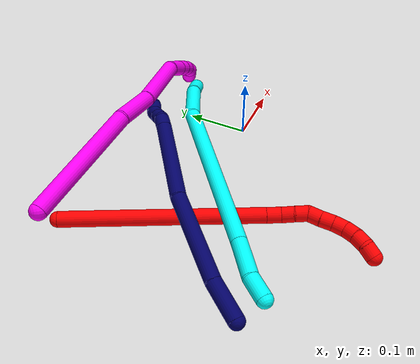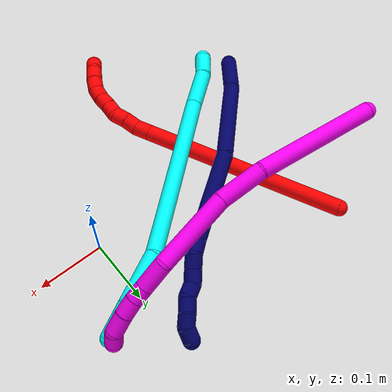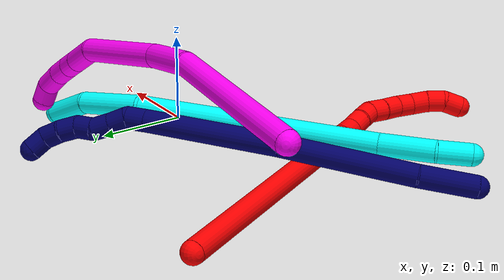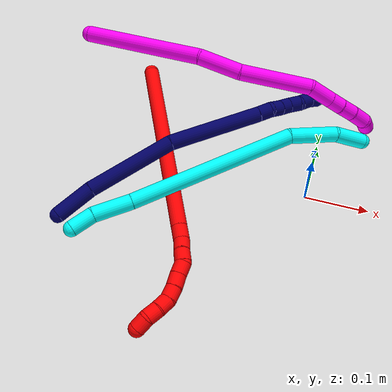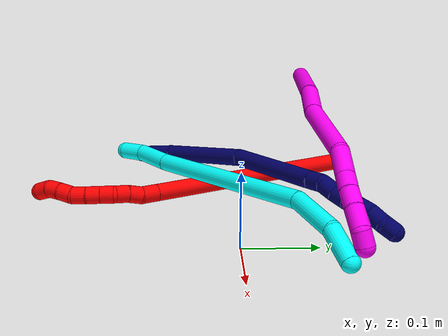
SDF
<sdf version="1.7">
 <world name="default">
  <model name="2">
   <static>0</static>
   <link name="2">
    <collision name="collision-cylinder-e_1_1_4">
     <pose>0.105596 -0.094481 0.069519 0.936448 0.732934 0.383437</pose>
     <geometry><cylinder><radius>0.0125</radius><length>0.315658</length></cylinder></geometry>
     <surface>
      <friction><ode><mu>1.16</mu><mu2>1.16</mu2><slip1>0</slip1><slip2>0</slip2></ode></friction>
      <contact><ode><kp>1e+06</kp><kd>1</kd><max_vel>0</max_vel><min_depth>0.001</min_depth></ode></contact>
     </surface>
    </collision>
    <visual name="visual-cylinder-e_1_1_4">
     <pose>0.105596 -0.094481 0.069519 0.936448 0.732934 0.383437</pose>
     <geometry><cylinder><radius>0.0125</radius><length>0.315658</length></cylinder></geometry>
     <material><ambient>1 0 0 1</ambient></material>
    </visual>
    <collision name="collision-cylinder-e_2_4_5">
     <pose>0.219106 -0.196065 0.144253 0.937448 0.73174 0.383234</pose>
     <geometry><cylinder><radius>0.0125</radius><length>0.023687</length></cylinder></geometry>
     <surface>
      <friction><ode><mu>1.16</mu><mu2>1.16</mu2><slip1>0</slip1><slip2>0</slip2></ode></friction>
      <contact><ode><kp>1e+06</kp><kd>1</kd><max_vel>0</max_vel><min_depth>0.001</min_depth></ode></contact>
     </surface>
    </collision>
    <visual name="visual-cylinder-e_2_4_5">
     <pose>0.219106 -0.196065 0.144253 0.937448 0.73174 0.383234</pose>
     <geometry><cylinder><radius>0.0125</radius><length>0.023687</length></cylinder></geometry>
     <material><ambient>1 0 0 1</ambient></material>
    </visual>
    <collision name="collision-cylinder-e_3_5_6">
     <pose>0.232955 -0.211149 0.152114 1.25072 0.614729 0.450598</pose>
     <geometry><cylinder><radius>0.0125</radius><length>0.020586</length></cylinder></geometry>
     <surface>
      <friction><ode><mu>1.16</mu><mu2>1.16</mu2><slip1>0</slip1><slip2>0</slip2></ode></friction>
      <contact><ode><kp>1e+06</kp><kd>1</kd><max_vel>0</max_vel><min_depth>0.001</min_depth></ode></contact>
     </surface>
    </collision>
    <visual name="visual-cylinder-e_3_5_6">
     <pose>0.232955 -0.211149 0.152114 1.25072 0.614729 0.450598</pose>
     <geometry><cylinder><radius>0.0125</radius><length>0.020586</length></cylinder></geometry>
     <material><ambient>1 0 0 1</ambient></material>
    </visual>
    <collision name="collision-cylinder-e_4_6_7">
     <pose>0.245224 -0.225927 0.158471 1.07098 0.685409 0.417208</pose>
     <geometry><cylinder><radius>0.0125</radius><length>0.020006</length></cylinder></geometry>
     <surface>
      <friction><ode><mu>1.16</mu><mu2>1.16</mu2><slip1>0</slip1><slip2>0</slip2></ode></friction>
      <contact><ode><kp>1e+06</kp><kd>1</kd><max_vel>0</max_vel><min_depth>0.001</min_depth></ode></contact>
     </surface>
    </collision>
    <visual name="visual-cylinder-e_4_6_7">
     <pose>0.245224 -0.225927 0.158471 1.07098 0.685409 0.417208</pose>
     <geometry><cylinder><radius>0.0125</radius><length>0.020006</length></cylinder></geometry>
     <material><ambient>1 0 0 1</ambient></material>
    </visual>
    <collision name="collision-cylinder-e_5_7_8">
     <pose>0.260047 -0.237997 0.161651 1.67122 1.01284 1.10037</pose>
     <geometry><cylinder><radius>0.0125</radius><length>0.020021</length></cylinder></geometry>
     <surface>
      <friction><ode><mu>1.16</mu><mu2>1.16</mu2><slip1>0</slip1><slip2>0</slip2></ode></friction>
      <contact><ode><kp>1e+06</kp><kd>1</kd><max_vel>0</max_vel><min_depth>0.001</min_depth></ode></contact>
     </surface>
    </collision>
    <visual name="visual-cylinder-e_5_7_8">
     <pose>0.260047 -0.237997 0.161651 1.67122 1.01284 1.10037</pose>
     <geometry><cylinder><radius>0.0125</radius><length>0.020021</length></cylinder></geometry>
     <material><ambient>1 0 0 1</ambient></material>
    </visual>
    <collision name="collision-cylinder-e_6_8_9">
     <pose>0.276862 -0.24883 0.161363 1.52696 0.981475 0.945466</pose>
     <geometry><cylinder><radius>0.0125</radius><length>0.020024</length></cylinder></geometry>
     <surface>
      <friction><ode><mu>1.16</mu><mu2>1.16</mu2><slip1>0</slip1><slip2>0</slip2></ode></friction>
      <contact><ode><kp>1e+06</kp><kd>1</kd><max_vel>0</max_vel><min_depth>0.001</min_depth></ode></contact>
     </surface>
    </collision>
    <visual name="visual-cylinder-e_6_8_9">
     <pose>0.276862 -0.24883 0.161363 1.52696 0.981475 0.945466</pose>
     <geometry><cylinder><radius>0.0125</radius><length>0.020024</length></cylinder></geometry>
     <material><ambient>1 0 0 1</ambient></material>
    </visual>
    <collision name="collision-cylinder-e_7_9_10">
     <pose>0.293623 -0.259632 0.160437 1.79033 1.00383 1.20081</pose>
     <geometry><cylinder><radius>0.0125</radius><length>0.020005</length></cylinder></geometry>
     <surface>
      <friction><ode><mu>1.16</mu><mu2>1.16</mu2><slip1>0</slip1><slip2>0</slip2></ode></friction>
      <contact><ode><kp>1e+06</kp><kd>1</kd><max_vel>0</max_vel><min_depth>0.001</min_depth></ode></contact>
     </surface>
    </collision>
    <visual name="visual-cylinder-e_7_9_10">
     <pose>0.293623 -0.259632 0.160437 1.79033 1.00383 1.20081</pose>
     <geometry><cylinder><radius>0.0125</radius><length>0.020005</length></cylinder></geometry>
     <material><ambient>1 0 0 1</ambient></material>
    </visual>
    <collision name="collision-cylinder-e_8_10_11">
     <pose>0.309182 -0.270284 0.15479 2.26226 0.792516 1.45395</pose>
     <geometry><cylinder><radius>0.0125</radius><length>0.020002</length></cylinder></geometry>
     <surface>
      <friction><ode><mu>1.16</mu><mu2>1.16</mu2><slip1>0</slip1><slip2>0</slip2></ode></friction>
      <contact><ode><kp>1e+06</kp><kd>1</kd><max_vel>0</max_vel><min_depth>0.001</min_depth></ode></contact>
     </surface>
    </collision>
    <visual name="visual-cylinder-e_8_10_11">
     <pose>0.309182 -0.270284 0.15479 2.26226 0.792516 1.45395</pose>
     <geometry><cylinder><radius>0.0125</radius><length>0.020002</length></cylinder></geometry>
     <material><ambient>1 0 0 1</ambient></material>
    </visual>
    <collision name="collision-cylinder-e_9_11_12">
     <pose>0.323806 -0.279605 0.144978 2.50871 0.848093 1.88653</pose>
     <geometry><cylinder><radius>0.0125</radius><length>0.020005</length></cylinder></geometry>
     <surface>
      <friction><ode><mu>1.16</mu><mu2>1.16</mu2><slip1>0</slip1><slip2>0</slip2></ode></friction>
      <contact><ode><kp>1e+06</kp><kd>1</kd><max_vel>0</max_vel><min_depth>0.001</min_depth></ode></contact>
     </surface>
    </collision>
    <visual name="visual-cylinder-e_9_11_12">
     <pose>0.323806 -0.279605 0.144978 2.50871 0.848093 1.88653</pose>
     <geometry><cylinder><radius>0.0125</radius><length>0.020005</length></cylinder></geometry>
     <material><ambient>1 0 0 1</ambient></material>
    </visual>
    <collision name="collision-cylinder-e_10_12_2">
     <pose>0.340541 -0.284347 0.135885 2.92455 1.17576 2.81753</pose>
     <geometry><cylinder><radius>0.0125</radius><length>0.020006</length></cylinder></geometry>
     <surface>
      <friction><ode><mu>1.16</mu><mu2>1.16</mu2><slip1>0</slip1><slip2>0</slip2></ode></friction>
      <contact><ode><kp>1e+06</kp><kd>1</kd><max_vel>0</max_vel><min_depth>0.001</min_depth></ode></contact>
     </surface>
    </collision>
    <visual name="visual-cylinder-e_10_12_2">
     <pose>0.340541 -0.284347 0.135885 2.92455 1.17576 2.81753</pose>
     <geometry><cylinder><radius>0.0125</radius><length>0.020006</length></cylinder></geometry>
     <material><ambient>1 0 0 1</ambient></material>
    </visual>
    <collision name="collision-sphere-2">
     <pose>0.349774 -0.285176 0.132125 0 -0 0</pose>
     <geometry><sphere><radius>0.0125</radius></sphere></geometry>
     <surface>
      <friction><ode><mu>1.16</mu><mu2>1.16</mu2><slip1>0</slip1><slip2>0</slip2></ode></friction>
      <contact><ode><kp>1e+06</kp><kd>1</kd><max_vel>0</max_vel><min_depth>0.001</min_depth></ode></contact>
     </surface>
    </collision>
    <visual name="visual-sphere-2">
     <pose>0.349774 -0.285176 0.132125 0 -0 0</pose>
     <geometry><sphere><radius>0.0125</radius></sphere></geometry>
     <material><ambient>1 0 0 1</ambient></material>
    </visual>
    <collision name="collision-sphere-12">
     <pose>0.331308 -0.283518 0.139644 0 -0 0</pose>
     <geometry><sphere><radius>0.0125</radius></sphere></geometry>
     <surface>
      <friction><ode><mu>1.16</mu><mu2>1.16</mu2><slip1>0</slip1><slip2>0</slip2></ode></friction>
      <contact><ode><kp>1e+06</kp><kd>1</kd><max_vel>0</max_vel><min_depth>0.001</min_depth></ode></contact>
     </surface>
    </collision>
    <visual name="visual-sphere-12">
     <pose>0.331308 -0.283518 0.139644 0 -0 0</pose>
     <geometry><sphere><radius>0.0125</radius></sphere></geometry>
     <material><ambient>1 0 0 1</ambient></material>
    </visual>
    <collision name="collision-sphere-11">
     <pose>0.316304 -0.275692 0.150313 0 -0 0</pose>
     <geometry><sphere><radius>0.0125</radius></sphere></geometry>
     <surface>
      <friction><ode><mu>1.16</mu><mu2>1.16</mu2><slip1>0</slip1><slip2>0</slip2></ode></friction>
      <contact><ode><kp>1e+06</kp><kd>1</kd><max_vel>0</max_vel><min_depth>0.001</min_depth></ode></contact>
     </surface>
    </collision>
    <visual name="visual-sphere-11">
     <pose>0.316304 -0.275692 0.150313 0 -0 0</pose>
     <geometry><sphere><radius>0.0125</radius></sphere></geometry>
     <material><ambient>1 0 0 1</ambient></material>
    </visual>
    <collision name="collision-sphere-10">
     <pose>0.30206 -0.264875 0.159267 0 -0 0</pose>
     <geometry><sphere><radius>0.0125</radius></sphere></geometry>
     <surface>
      <friction><ode><mu>1.16</mu><mu2>1.16</mu2><slip1>0</slip1><slip2>0</slip2></ode></friction>
      <contact><ode><kp>1e+06</kp><kd>1</kd><max_vel>0</max_vel><min_depth>0.001</min_depth></ode></contact>
     </surface>
    </collision>
    <visual name="visual-sphere-10">
     <pose>0.30206 -0.264875 0.159267 0 -0 0</pose>
     <geometry><sphere><radius>0.0125</radius></sphere></geometry>
     <material><ambient>1 0 0 1</ambient></material>
    </visual>
    <collision name="collision-sphere-9">
     <pose>0.285185 -0.254389 0.161607 0 -0 0</pose>
     <geometry><sphere><radius>0.0125</radius></sphere></geometry>
     <surface>
      <friction><ode><mu>1.16</mu><mu2>1.16</mu2><slip1>0</slip1><slip2>0</slip2></ode></friction>
      <contact><ode><kp>1e+06</kp><kd>1</kd><max_vel>0</max_vel><min_depth>0.001</min_depth></ode></contact>
     </surface>
    </collision>
    <visual name="visual-sphere-9">
     <pose>0.285185 -0.254389 0.161607 0 -0 0</pose>
     <geometry><sphere><radius>0.0125</radius></sphere></geometry>
     <material><ambient>1 0 0 1</ambient></material>
    </visual>
    <collision name="collision-sphere-4">
     <pose>0.211192 -0.188962 0.139037 0 -0 0</pose>
     <geometry><sphere><radius>0.0125</radius></sphere></geometry>
     <surface>
      <friction><ode><mu>1.16</mu><mu2>1.16</mu2><slip1>0</slip1><slip2>0</slip2></ode></friction>
      <contact><ode><kp>1e+06</kp><kd>1</kd><max_vel>0</max_vel><min_depth>0.001</min_depth></ode></contact>
     </surface>
    </collision>
    <visual name="visual-sphere-4">
     <pose>0.211192 -0.188962 0.139037 0 -0 0</pose>
     <geometry><sphere><radius>0.0125</radius></sphere></geometry>
     <material><ambient>1 0 0 1</ambient></material>
    </visual>
    <collision name="collision-sphere-1">
     <geometry><sphere><radius>0.0125</radius></sphere></geometry>
     <surface>
      <friction><ode><mu>1.16</mu><mu2>1.16</mu2><slip1>0</slip1><slip2>0</slip2></ode></friction>
      <contact><ode><kp>1e+06</kp><kd>1</kd><max_vel>0</max_vel><min_depth>0.001</min_depth></ode></contact>
     </surface>
    </collision>
    <visual name="visual-sphere-1">
     <geometry><sphere><radius>0.0125</radius></sphere></geometry>
     <material><ambient>1 0 0 1</ambient></material>
    </visual>
    <collision name="collision-sphere-8">
     <pose>0.26854 -0.243271 0.161119 0 -0 0</pose>
     <geometry><sphere><radius>0.0125</radius></sphere></geometry>
     <surface>
      <friction><ode><mu>1.16</mu><mu2>1.16</mu2><slip1>0</slip1><slip2>0</slip2></ode></friction>
      <contact><ode><kp>1e+06</kp><kd>1</kd><max_vel>0</max_vel><min_depth>0.001</min_depth></ode></contact>
     </surface>
    </collision>
    <visual name="visual-sphere-8">
     <pose>0.26854 -0.243271 0.161119 0 -0 0</pose>
     <geometry><sphere><radius>0.0125</radius></sphere></geometry>
     <material><ambient>1 0 0 1</ambient></material>
    </visual>
    <collision name="collision-sphere-5">
     <pose>0.227019 -0.203168 0.149468 0 -0 0</pose>
     <geometry><sphere><radius>0.0125</radius></sphere></geometry>
     <surface>
      <friction><ode><mu>1.16</mu><mu2>1.16</mu2><slip1>0</slip1><slip2>0</slip2></ode></friction>
      <contact><ode><kp>1e+06</kp><kd>1</kd><max_vel>0</max_vel><min_depth>0.001</min_depth></ode></contact>
     </surface>
    </collision>
    <visual name="visual-sphere-5">
     <pose>0.227019 -0.203168 0.149468 0 -0 0</pose>
     <geometry><sphere><radius>0.0125</radius></sphere></geometry>
     <material><ambient>1 0 0 1</ambient></material>
    </visual>
    <collision name="collision-sphere-6">
     <pose>0.238892 -0.219131 0.154759 0 -0 0</pose>
     <geometry><sphere><radius>0.0125</radius></sphere></geometry>
     <surface>
      <friction><ode><mu>1.16</mu><mu2>1.16</mu2><slip1>0</slip1><slip2>0</slip2></ode></friction>
      <contact><ode><kp>1e+06</kp><kd>1</kd><max_vel>0</max_vel><min_depth>0.001</min_depth></ode></contact>
     </surface>
    </collision>
    <visual name="visual-sphere-6">
     <pose>0.238892 -0.219131 0.154759 0 -0 0</pose>
     <geometry><sphere><radius>0.0125</radius></sphere></geometry>
     <material><ambient>1 0 0 1</ambient></material>
    </visual>
    <collision name="collision-sphere-7">
     <pose>0.251555 -0.232724 0.162182 0 -0 0</pose>
     <geometry><sphere><radius>0.0125</radius></sphere></geometry>
     <surface>
      <friction><ode><mu>1.16</mu><mu2>1.16</mu2><slip1>0</slip1><slip2>0</slip2></ode></friction>
      <contact><ode><kp>1e+06</kp><kd>1</kd><max_vel>0</max_vel><min_depth>0.001</min_depth></ode></contact>
     </surface>
    </collision>
    <visual name="visual-sphere-7">
     <pose>0.251555 -0.232724 0.162182 0 -0 0</pose>
     <geometry><sphere><radius>0.0125</radius></sphere></geometry>
     <material><ambient>1 0 0 1</ambient></material>
    </visual>
    <inertial>
     <pose>0.168646 -0.149929 0.10011 0 -0 0</pose>
     <mass>0.5</mass>
     <inertia>
      <ixx>0.002584</ixx>
      <ixy>0</ixy>
      <ixz>0</ixz>
      <iyy>0.002703</iyy>
      <iyz>0</iyz>
      <izz>-0.000178</izz>
     </inertia>
    </inertial>
   </link>
   <pose>-0.3125 0.173926 0.011497 -1.84884 0.596967 -1.74373</pose>
  </model>
  <model name="3">
   <static>0</static>
   <link name="3">
    <collision name="collision-cylinder-e_1_1_4">
     <pose>-0.002304 0.00022 -0.018431 -3.12967 -0.124345 2.95057</pose>
     <geometry><cylinder><radius>0.0125</radius><length>0.037152</length></cylinder></geometry>
     <surface>
      <friction><ode><mu>1.16</mu><mu2>1.16</mu2><slip1>0</slip1><slip2>0</slip2></ode></friction>
      <contact><ode><kp>1e+06</kp><kd>1</kd><max_vel>0</max_vel><min_depth>0.001</min_depth></ode></contact>
     </surface>
    </collision>
    <visual name="visual-cylinder-e_1_1_4">
     <pose>-0.002304 0.00022 -0.018431 -3.12967 -0.124345 2.95057</pose>
     <geometry><cylinder><radius>0.0125</radius><length>0.037152</length></cylinder></geometry>
     <material><ambient>0.003922 1 0.996078 1</ambient></material>
    </visual>
    <collision name="collision-cylinder-e_2_4_5">
     <pose>-0.000643 0.003036 -0.06728 -3.05643 0.129158 -1.97645</pose>
     <geometry><cylinder><radius>0.0125</radius><length>0.06157</length></cylinder></geometry>
     <surface>
      <friction><ode><mu>1.16</mu><mu2>1.16</mu2><slip1>0</slip1><slip2>0</slip2></ode></friction>
      <contact><ode><kp>1e+06</kp><kd>1</kd><max_vel>0</max_vel><min_depth>0.001</min_depth></ode></contact>
     </surface>
    </collision>
    <visual name="visual-cylinder-e_2_4_5">
     <pose>-0.000643 0.003036 -0.06728 -3.05643 0.129158 -1.97645</pose>
     <geometry><cylinder><radius>0.0125</radius><length>0.06157</length></cylinder></geometry>
     <material><ambient>0.003922 1 0.996078 1</ambient></material>
    </visual>
    <collision name="collision-cylinder-e_3_5_6">
     <pose>0.011475 0.020175 -0.231817 -3.03359 0.060359 -1.01866</pose>
     <geometry><cylinder><radius>0.0125</radius><length>0.270301</length></cylinder></geometry>
     <surface>
      <friction><ode><mu>1.16</mu><mu2>1.16</mu2><slip1>0</slip1><slip2>0</slip2></ode></friction>
      <contact><ode><kp>1e+06</kp><kd>1</kd><max_vel>0</max_vel><min_depth>0.001</min_depth></ode></contact>
     </surface>
    </collision>
    <visual name="visual-cylinder-e_3_5_6">
     <pose>0.011475 0.020175 -0.231817 -3.03359 0.060359 -1.01866</pose>
     <geometry><cylinder><radius>0.0125</radius><length>0.270301</length></cylinder></geometry>
     <material><ambient>0.003922 1 0.996078 1</ambient></material>
    </visual>
    <collision name="collision-cylinder-e_4_6_7">
     <pose>0.034666 0.037535 -0.401695 -3.06296 0.396975 -2.75534</pose>
     <geometry><cylinder><radius>0.0125</radius><length>0.077792</length></cylinder></geometry>
     <surface>
      <friction><ode><mu>1.16</mu><mu2>1.16</mu2><slip1>0</slip1><slip2>0</slip2></ode></friction>
      <contact><ode><kp>1e+06</kp><kd>1</kd><max_vel>0</max_vel><min_depth>0.001</min_depth></ode></contact>
     </surface>
    </collision>
    <visual name="visual-cylinder-e_4_6_7">
     <pose>0.034666 0.037535 -0.401695 -3.06296 0.396975 -2.75534</pose>
     <geometry><cylinder><radius>0.0125</radius><length>0.077792</length></cylinder></geometry>
     <material><ambient>0.003922 1 0.996078 1</ambient></material>
    </visual>
    <collision name="collision-cylinder-e_5_7_2">
     <pose>0.065059 0.035942 -0.458715 2.93701 0.615531 2.51687</pose>
     <geometry><cylinder><radius>0.0125</radius><length>0.053185</length></cylinder></geometry>
     <surface>
      <friction><ode><mu>1.16</mu><mu2>1.16</mu2><slip1>0</slip1><slip2>0</slip2></ode></friction>
      <contact><ode><kp>1e+06</kp><kd>1</kd><max_vel>0</max_vel><min_depth>0.001</min_depth></ode></contact>
     </surface>
    </collision>
    <visual name="visual-cylinder-e_5_7_2">
     <pose>0.065059 0.035942 -0.458715 2.93701 0.615531 2.51687</pose>
     <geometry><cylinder><radius>0.0125</radius><length>0.053185</length></cylinder></geometry>
     <material><ambient>0.003922 1 0.996078 1</ambient></material>
    </visual>
    <collision name="collision-sphere-2">
     <pose>0.080413 0.031531 -0.479974 0 -0 0</pose>
     <geometry><sphere><radius>0.0125</radius></sphere></geometry>
     <surface>
      <friction><ode><mu>1.16</mu><mu2>1.16</mu2><slip1>0</slip1><slip2>0</slip2></ode></friction>
      <contact><ode><kp>1e+06</kp><kd>1</kd><max_vel>0</max_vel><min_depth>0.001</min_depth></ode></contact>
     </surface>
    </collision>
    <visual name="visual-sphere-2">
     <pose>0.080413 0.031531 -0.479974 0 -0 0</pose>
     <geometry><sphere><radius>0.0125</radius></sphere></geometry>
     <material><ambient>0.003922 1 0.996078 1</ambient></material>
    </visual>
    <collision name="collision-sphere-7">
     <pose>0.049705 0.040353 -0.437456 0 -0 0</pose>
     <geometry><sphere><radius>0.0125</radius></sphere></geometry>
     <surface>
      <friction><ode><mu>1.16</mu><mu2>1.16</mu2><slip1>0</slip1><slip2>0</slip2></ode></friction>
      <contact><ode><kp>1e+06</kp><kd>1</kd><max_vel>0</max_vel><min_depth>0.001</min_depth></ode></contact>
     </surface>
    </collision>
    <visual name="visual-sphere-7">
     <pose>0.049705 0.040353 -0.437456 0 -0 0</pose>
     <geometry><sphere><radius>0.0125</radius></sphere></geometry>
     <material><ambient>0.003922 1 0.996078 1</ambient></material>
    </visual>
    <collision name="collision-sphere-6">
     <pose>0.019628 0.034718 -0.365935 0 -0 0</pose>
     <geometry><sphere><radius>0.0125</radius></sphere></geometry>
     <surface>
      <friction><ode><mu>1.16</mu><mu2>1.16</mu2><slip1>0</slip1><slip2>0</slip2></ode></friction>
      <contact><ode><kp>1e+06</kp><kd>1</kd><max_vel>0</max_vel><min_depth>0.001</min_depth></ode></contact>
     </surface>
    </collision>
    <visual name="visual-sphere-6">
     <pose>0.019628 0.034718 -0.365935 0 -0 0</pose>
     <geometry><sphere><radius>0.0125</radius></sphere></geometry>
     <material><ambient>0.003922 1 0.996078 1</ambient></material>
    </visual>
    <collision name="collision-sphere-5">
     <pose>0.003322 0.005633 -0.097698 0 -0 0</pose>
     <geometry><sphere><radius>0.0125</radius></sphere></geometry>
     <surface>
      <friction><ode><mu>1.16</mu><mu2>1.16</mu2><slip1>0</slip1><slip2>0</slip2></ode></friction>
      <contact><ode><kp>1e+06</kp><kd>1</kd><max_vel>0</max_vel><min_depth>0.001</min_depth></ode></contact>
     </surface>
    </collision>
    <visual name="visual-sphere-5">
     <pose>0.003322 0.005633 -0.097698 0 -0 0</pose>
     <geometry><sphere><radius>0.0125</radius></sphere></geometry>
     <material><ambient>0.003922 1 0.996078 1</ambient></material>
    </visual>
    <collision name="collision-sphere-1">
     <geometry><sphere><radius>0.0125</radius></sphere></geometry>
     <surface>
      <friction><ode><mu>1.16</mu><mu2>1.16</mu2><slip1>0</slip1><slip2>0</slip2></ode></friction>
      <contact><ode><kp>1e+06</kp><kd>1</kd><max_vel>0</max_vel><min_depth>0.001</min_depth></ode></contact>
     </surface>
    </collision>
    <visual name="visual-sphere-1">
     <geometry><sphere><radius>0.0125</radius></sphere></geometry>
     <material><ambient>0.003922 1 0.996078 1</ambient></material>
    </visual>
    <collision name="collision-sphere-4">
     <pose>-0.004608 0.00044 -0.036862 0 -0 0</pose>
     <geometry><sphere><radius>0.0125</radius></sphere></geometry>
     <surface>
      <friction><ode><mu>1.16</mu><mu2>1.16</mu2><slip1>0</slip1><slip2>0</slip2></ode></friction>
      <contact><ode><kp>1e+06</kp><kd>1</kd><max_vel>0</max_vel><min_depth>0.001</min_depth></ode></contact>
     </surface>
    </collision>
    <visual name="visual-sphere-4">
     <pose>-0.004608 0.00044 -0.036862 0 -0 0</pose>
     <geometry><sphere><radius>0.0125</radius></sphere></geometry>
     <material><ambient>0.003922 1 0.996078 1</ambient></material>
    </visual>
    <inertial>
     <pose>0.018267 0.02096 -0.246266 0 -0 0</pose>
     <mass>0.5</mass>
     <inertia>
      <ixx>-0.000621</ixx>
      <ixy>0</ixy>
      <ixz>0</ixz>
      <iyy>-0.00222</iyy>
      <iyz>0</iyz>
      <izz>-0.000345</izz>
     </inertia>
    </inertial>
   </link>
   <pose>-0.323858 -0.163727 0.029095 1.56673 0.55949 -0.765814</pose>
  </model>
  <model name="7">
   <static>0</static>
   <link name="7">
    <collision name="collision-cylinder-e_1_1_4">
     <pose>0.019704 0.007089 -0.023626 -2.85009 0.674025 -2.34812</pose>
     <geometry><cylinder><radius>0.0125</radius><length>0.06314</length></cylinder></geometry>
     <surface>
      <friction><ode><mu>1.16</mu><mu2>1.16</mu2><slip1>0</slip1><slip2>0</slip2></ode></friction>
      <contact><ode><kp>1e+06</kp><kd>1</kd><max_vel>0</max_vel><min_depth>0.001</min_depth></ode></contact>
     </surface>
    </collision>
    <visual name="visual-cylinder-e_1_1_4">
     <pose>0.019704 0.007089 -0.023626 -2.85009 0.674025 -2.34812</pose>
     <geometry><cylinder><radius>0.0125</radius><length>0.06314</length></cylinder></geometry>
     <material><ambient>0.003922 0 0.403922 1</ambient></material>
    </visual>
    <collision name="collision-cylinder-e_2_4_5">
     <pose>0.080801 0.021442 -0.105806 -3.01816 0.611756 -2.75512</pose>
     <geometry><cylinder><radius>0.0125</radius><length>0.14415</length></cylinder></geometry>
     <surface>
      <friction><ode><mu>1.16</mu><mu2>1.16</mu2><slip1>0</slip1><slip2>0</slip2></ode></friction>
      <contact><ode><kp>1e+06</kp><kd>1</kd><max_vel>0</max_vel><min_depth>0.001</min_depth></ode></contact>
     </surface>
    </collision>
    <visual name="visual-cylinder-e_2_4_5">
     <pose>0.080801 0.021442 -0.105806 -3.01816 0.611756 -2.75512</pose>
     <geometry><cylinder><radius>0.0125</radius><length>0.14415</length></cylinder></geometry>
     <material><ambient>0.003922 0 0.403922 1</ambient></material>
    </visual>
    <collision name="collision-cylinder-e_3_5_6">
     <pose>0.154699 0.026741 -0.232251 3.11265 0.446362 3.01425</pose>
     <geometry><cylinder><radius>0.0125</radius><length>0.150593</length></cylinder></geometry>
     <surface>
      <friction><ode><mu>1.16</mu><mu2>1.16</mu2><slip1>0</slip1><slip2>0</slip2></ode></friction>
      <contact><ode><kp>1e+06</kp><kd>1</kd><max_vel>0</max_vel><min_depth>0.001</min_depth></ode></contact>
     </surface>
    </collision>
    <visual name="visual-cylinder-e_3_5_6">
     <pose>0.154699 0.026741 -0.232251 3.11265 0.446362 3.01425</pose>
     <geometry><cylinder><radius>0.0125</radius><length>0.150593</length></cylinder></geometry>
     <material><ambient>0.003922 0 0.403922 1</ambient></material>
    </visual>
    <collision name="collision-cylinder-e_4_6_7">
     <pose>0.191937 0.025056 -0.309555 -3.11179 0.465825 -3.01611</pose>
     <geometry><cylinder><radius>0.0125</radius><length>0.02108</length></cylinder></geometry>
     <surface>
      <friction><ode><mu>1.16</mu><mu2>1.16</mu2><slip1>0</slip1><slip2>0</slip2></ode></friction>
      <contact><ode><kp>1e+06</kp><kd>1</kd><max_vel>0</max_vel><min_depth>0.001</min_depth></ode></contact>
     </surface>
    </collision>
    <visual name="visual-cylinder-e_4_6_7">
     <pose>0.191937 0.025056 -0.309555 -3.11179 0.465825 -3.01611</pose>
     <geometry><cylinder><radius>0.0125</radius><length>0.02108</length></cylinder></geometry>
     <material><ambient>0.003922 0 0.403922 1</ambient></material>
    </visual>
    <collision name="collision-cylinder-e_5_7_8">
     <pose>0.19721 0.028391 -0.32863 -2.83545 0.053075 -0.340772</pose>
     <geometry><cylinder><radius>0.0125</radius><length>0.020296</length></cylinder></geometry>
     <surface>
      <friction><ode><mu>1.16</mu><mu2>1.16</mu2><slip1>0</slip1><slip2>0</slip2></ode></friction>
      <contact><ode><kp>1e+06</kp><kd>1</kd><max_vel>0</max_vel><min_depth>0.001</min_depth></ode></contact>
     </surface>
    </collision>
    <visual name="visual-cylinder-e_5_7_8">
     <pose>0.19721 0.028391 -0.32863 -2.83545 0.053075 -0.340772</pose>
     <geometry><cylinder><radius>0.0125</radius><length>0.020296</length></cylinder></geometry>
     <material><ambient>0.003922 0 0.403922 1</ambient></material>
    </visual>
    <collision name="collision-cylinder-e_6_8_9">
     <pose>0.199104 0.034631 -0.347944 -2.82273 0.132637 -0.783411</pose>
     <geometry><cylinder><radius>0.0125</radius><length>0.020508</length></cylinder></geometry>
     <surface>
      <friction><ode><mu>1.16</mu><mu2>1.16</mu2><slip1>0</slip1><slip2>0</slip2></ode></friction>
      <contact><ode><kp>1e+06</kp><kd>1</kd><max_vel>0</max_vel><min_depth>0.001</min_depth></ode></contact>
     </surface>
    </collision>
    <visual name="visual-cylinder-e_6_8_9">
     <pose>0.199104 0.034631 -0.347944 -2.82273 0.132637 -0.783411</pose>
     <geometry><cylinder><radius>0.0125</radius><length>0.020508</length></cylinder></geometry>
     <material><ambient>0.003922 0 0.403922 1</ambient></material>
    </visual>
    <collision name="collision-cylinder-e_7_9_10">
     <pose>0.203982 0.036909 -0.366985 3.04514 0.357297 2.61924</pose>
     <geometry><cylinder><radius>0.0125</radius><length>0.020138</length></cylinder></geometry>
     <surface>
      <friction><ode><mu>1.16</mu><mu2>1.16</mu2><slip1>0</slip1><slip2>0</slip2></ode></friction>
      <contact><ode><kp>1e+06</kp><kd>1</kd><max_vel>0</max_vel><min_depth>0.001</min_depth></ode></contact>
     </surface>
    </collision>
    <visual name="visual-cylinder-e_7_9_10">
     <pose>0.203982 0.036909 -0.366985 3.04514 0.357297 2.61924</pose>
     <geometry><cylinder><radius>0.0125</radius><length>0.020138</length></cylinder></geometry>
     <material><ambient>0.003922 0 0.403922 1</ambient></material>
    </visual>
    <collision name="collision-cylinder-e_8_10_11">
     <pose>0.209365 0.039325 -0.385642 -2.79721 0.186878 -0.988481</pose>
     <geometry><cylinder><radius>0.0125</radius><length>0.020041</length></cylinder></geometry>
     <surface>
      <friction><ode><mu>1.16</mu><mu2>1.16</mu2><slip1>0</slip1><slip2>0</slip2></ode></friction>
      <contact><ode><kp>1e+06</kp><kd>1</kd><max_vel>0</max_vel><min_depth>0.001</min_depth></ode></contact>
     </surface>
    </collision>
    <visual name="visual-cylinder-e_8_10_11">
     <pose>0.209365 0.039325 -0.385642 -2.79721 0.186878 -0.988481</pose>
     <geometry><cylinder><radius>0.0125</radius><length>0.020041</length></cylinder></geometry>
     <material><ambient>0.003922 0 0.403922 1</ambient></material>
    </visual>
    <collision name="collision-cylinder-e_9_11_12">
     <pose>0.211278 0.045442 -0.404529 -2.85894 0.005093 -0.035796</pose>
     <geometry><cylinder><radius>0.0125</radius><length>0.020034</length></cylinder></geometry>
     <surface>
      <friction><ode><mu>1.16</mu><mu2>1.16</mu2><slip1>0</slip1><slip2>0</slip2></ode></friction>
      <contact><ode><kp>1e+06</kp><kd>1</kd><max_vel>0</max_vel><min_depth>0.001</min_depth></ode></contact>
     </surface>
    </collision>
    <visual name="visual-cylinder-e_9_11_12">
     <pose>0.211278 0.045442 -0.404529 -2.85894 0.005093 -0.035796</pose>
     <geometry><cylinder><radius>0.0125</radius><length>0.020034</length></cylinder></geometry>
     <material><ambient>0.003922 0 0.403922 1</ambient></material>
    </visual>
    <collision name="collision-cylinder-e_10_12_2">
     <pose>0.210293 0.05523 -0.421235 -2.36283 -0.103654 0.251503</pose>
     <geometry><cylinder><radius>0.0125</radius><length>0.020021</length></cylinder></geometry>
     <surface>
      <friction><ode><mu>1.16</mu><mu2>1.16</mu2><slip1>0</slip1><slip2>0</slip2></ode></friction>
      <contact><ode><kp>1e+06</kp><kd>1</kd><max_vel>0</max_vel><min_depth>0.001</min_depth></ode></contact>
     </surface>
    </collision>
    <visual name="visual-cylinder-e_10_12_2">
     <pose>0.210293 0.05523 -0.421235 -2.36283 -0.103654 0.251503</pose>
     <geometry><cylinder><radius>0.0125</radius><length>0.020021</length></cylinder></geometry>
     <material><ambient>0.003922 0 0.403922 1</ambient></material>
    </visual>
    <collision name="collision-sphere-2">
     <pose>0.209257 0.062223 -0.428322 0 -0 0</pose>
     <geometry><sphere><radius>0.0125</radius></sphere></geometry>
     <surface>
      <friction><ode><mu>1.16</mu><mu2>1.16</mu2><slip1>0</slip1><slip2>0</slip2></ode></friction>
      <contact><ode><kp>1e+06</kp><kd>1</kd><max_vel>0</max_vel><min_depth>0.001</min_depth></ode></contact>
     </surface>
    </collision>
    <visual name="visual-sphere-2">
     <pose>0.209257 0.062223 -0.428322 0 -0 0</pose>
     <geometry><sphere><radius>0.0125</radius></sphere></geometry>
     <material><ambient>0.003922 0 0.403922 1</ambient></material>
    </visual>
    <collision name="collision-sphere-12">
     <pose>0.211329 0.048236 -0.414148 0 -0 0</pose>
     <geometry><sphere><radius>0.0125</radius></sphere></geometry>
     <surface>
      <friction><ode><mu>1.16</mu><mu2>1.16</mu2><slip1>0</slip1><slip2>0</slip2></ode></friction>
      <contact><ode><kp>1e+06</kp><kd>1</kd><max_vel>0</max_vel><min_depth>0.001</min_depth></ode></contact>
     </surface>
    </collision>
    <visual name="visual-sphere-12">
     <pose>0.211329 0.048236 -0.414148 0 -0 0</pose>
     <geometry><sphere><radius>0.0125</radius></sphere></geometry>
     <material><ambient>0.003922 0 0.403922 1</ambient></material>
    </visual>
    <collision name="collision-sphere-11">
     <pose>0.211227 0.042649 -0.39491 0 -0 0</pose>
     <geometry><sphere><radius>0.0125</radius></sphere></geometry>
     <surface>
      <friction><ode><mu>1.16</mu><mu2>1.16</mu2><slip1>0</slip1><slip2>0</slip2></ode></friction>
      <contact><ode><kp>1e+06</kp><kd>1</kd><max_vel>0</max_vel><min_depth>0.001</min_depth></ode></contact>
     </surface>
    </collision>
    <visual name="visual-sphere-11">
     <pose>0.211227 0.042649 -0.39491 0 -0 0</pose>
     <geometry><sphere><radius>0.0125</radius></sphere></geometry>
     <material><ambient>0.003922 0 0.403922 1</ambient></material>
    </visual>
    <collision name="collision-sphere-10">
     <pose>0.207503 0.036001 -0.376374 0 -0 0</pose>
     <geometry><sphere><radius>0.0125</radius></sphere></geometry>
     <surface>
      <friction><ode><mu>1.16</mu><mu2>1.16</mu2><slip1>0</slip1><slip2>0</slip2></ode></friction>
      <contact><ode><kp>1e+06</kp><kd>1</kd><max_vel>0</max_vel><min_depth>0.001</min_depth></ode></contact>
     </surface>
    </collision>
    <visual name="visual-sphere-10">
     <pose>0.207503 0.036001 -0.376374 0 -0 0</pose>
     <geometry><sphere><radius>0.0125</radius></sphere></geometry>
     <material><ambient>0.003922 0 0.403922 1</ambient></material>
    </visual>
    <collision name="collision-sphere-9">
     <pose>0.20046 0.037817 -0.357596 0 -0 0</pose>
     <geometry><sphere><radius>0.0125</radius></sphere></geometry>
     <surface>
      <friction><ode><mu>1.16</mu><mu2>1.16</mu2><slip1>0</slip1><slip2>0</slip2></ode></friction>
      <contact><ode><kp>1e+06</kp><kd>1</kd><max_vel>0</max_vel><min_depth>0.001</min_depth></ode></contact>
     </surface>
    </collision>
    <visual name="visual-sphere-9">
     <pose>0.20046 0.037817 -0.357596 0 -0 0</pose>
     <geometry><sphere><radius>0.0125</radius></sphere></geometry>
     <material><ambient>0.003922 0 0.403922 1</ambient></material>
    </visual>
    <collision name="collision-sphere-4">
     <pose>0.039408 0.014178 -0.047251 0 -0 0</pose>
     <geometry><sphere><radius>0.0125</radius></sphere></geometry>
     <surface>
      <friction><ode><mu>1.16</mu><mu2>1.16</mu2><slip1>0</slip1><slip2>0</slip2></ode></friction>
      <contact><ode><kp>1e+06</kp><kd>1</kd><max_vel>0</max_vel><min_depth>0.001</min_depth></ode></contact>
     </surface>
    </collision>
    <visual name="visual-sphere-4">
     <pose>0.039408 0.014178 -0.047251 0 -0 0</pose>
     <geometry><sphere><radius>0.0125</radius></sphere></geometry>
     <material><ambient>0.003922 0 0.403922 1</ambient></material>
    </visual>
    <collision name="collision-sphere-1">
     <geometry><sphere><radius>0.0125</radius></sphere></geometry>
     <surface>
      <friction><ode><mu>1.16</mu><mu2>1.16</mu2><slip1>0</slip1><slip2>0</slip2></ode></friction>
      <contact><ode><kp>1e+06</kp><kd>1</kd><max_vel>0</max_vel><min_depth>0.001</min_depth></ode></contact>
     </surface>
    </collision>
    <visual name="visual-sphere-1">
     <geometry><sphere><radius>0.0125</radius></sphere></geometry>
     <material><ambient>0.003922 0 0.403922 1</ambient></material>
    </visual>
    <collision name="collision-sphere-8">
     <pose>0.197748 0.031445 -0.338293 0 -0 0</pose>
     <geometry><sphere><radius>0.0125</radius></sphere></geometry>
     <surface>
      <friction><ode><mu>1.16</mu><mu2>1.16</mu2><slip1>0</slip1><slip2>0</slip2></ode></friction>
      <contact><ode><kp>1e+06</kp><kd>1</kd><max_vel>0</max_vel><min_depth>0.001</min_depth></ode></contact>
     </surface>
    </collision>
    <visual name="visual-sphere-8">
     <pose>0.197748 0.031445 -0.338293 0 -0 0</pose>
     <geometry><sphere><radius>0.0125</radius></sphere></geometry>
     <material><ambient>0.003922 0 0.403922 1</ambient></material>
    </visual>
    <collision name="collision-sphere-5">
     <pose>0.122194 0.028706 -0.16436 0 -0 0</pose>
     <geometry><sphere><radius>0.0125</radius></sphere></geometry>
     <surface>
      <friction><ode><mu>1.16</mu><mu2>1.16</mu2><slip1>0</slip1><slip2>0</slip2></ode></friction>
      <contact><ode><kp>1e+06</kp><kd>1</kd><max_vel>0</max_vel><min_depth>0.001</min_depth></ode></contact>
     </surface>
    </collision>
    <visual name="visual-sphere-5">
     <pose>0.122194 0.028706 -0.16436 0 -0 0</pose>
     <geometry><sphere><radius>0.0125</radius></sphere></geometry>
     <material><ambient>0.003922 0 0.403922 1</ambient></material>
    </visual>
    <collision name="collision-sphere-6">
     <pose>0.187203 0.024776 -0.300142 0 -0 0</pose>
     <geometry><sphere><radius>0.0125</radius></sphere></geometry>
     <surface>
      <friction><ode><mu>1.16</mu><mu2>1.16</mu2><slip1>0</slip1><slip2>0</slip2></ode></friction>
      <contact><ode><kp>1e+06</kp><kd>1</kd><max_vel>0</max_vel><min_depth>0.001</min_depth></ode></contact>
     </surface>
    </collision>
    <visual name="visual-sphere-6">
     <pose>0.187203 0.024776 -0.300142 0 -0 0</pose>
     <geometry><sphere><radius>0.0125</radius></sphere></geometry>
     <material><ambient>0.003922 0 0.403922 1</ambient></material>
    </visual>
    <collision name="collision-sphere-7">
     <pose>0.196672 0.025337 -0.318968 0 -0 0</pose>
     <geometry><sphere><radius>0.0125</radius></sphere></geometry>
     <surface>
      <friction><ode><mu>1.16</mu><mu2>1.16</mu2><slip1>0</slip1><slip2>0</slip2></ode></friction>
      <contact><ode><kp>1e+06</kp><kd>1</kd><max_vel>0</max_vel><min_depth>0.001</min_depth></ode></contact>
     </surface>
    </collision>
    <visual name="visual-sphere-7">
     <pose>0.196672 0.025337 -0.318968 0 -0 0</pose>
     <geometry><sphere><radius>0.0125</radius></sphere></geometry>
     <material><ambient>0.003922 0 0.403922 1</ambient></material>
    </visual>
    <inertial>
     <pose>0.130133 0.025855 -0.207413 0 -0 0</pose>
     <mass>0.5</mass>
     <inertia>
      <ixx>-0.000507</ixx>
      <ixy>0</ixy>
      <ixz>0</ixz>
      <iyy>0.000491</iyy>
      <iyz>0</iyz>
      <izz>-0.000348</izz>
     </inertia>
    </inertial>
   </link>
   <pose>-0.359393 -0.139394 0.012112 -0.696171 -1.05681 1.26603</pose>
  </model>
  <model name="10">
   <static>0</static>
   <link name="10">
    <collision name="collision-cylinder-e_1_1_4">
     <pose>0.02366 0.054598 0.071663 -0.651058 0.256824 -0.087112</pose>
     <geometry><cylinder><radius>0.0125</radius><length>0.186295</length></cylinder></geometry>
     <surface>
      <friction><ode><mu>1.16</mu><mu2>1.16</mu2><slip1>0</slip1><slip2>0</slip2></ode></friction>
      <contact><ode><kp>1e+06</kp><kd>1</kd><max_vel>0</max_vel><min_depth>0.001</min_depth></ode></contact>
     </surface>
    </collision>
    <visual name="visual-cylinder-e_1_1_4">
     <pose>0.02366 0.054598 0.071663 -0.651058 0.256824 -0.087112</pose>
     <geometry><cylinder><radius>0.0125</radius><length>0.186295</length></cylinder></geometry>
     <material><ambient>1 0 0.964706 1</ambient></material>
    </visual>
    <collision name="collision-cylinder-e_2_4_5">
     <pose>0.061401 0.122786 0.169865 -0.473255 0.441189 -0.108046</pose>
     <geometry><cylinder><radius>0.0125</radius><length>0.065946</length></cylinder></geometry>
     <surface>
      <friction><ode><mu>1.16</mu><mu2>1.16</mu2><slip1>0</slip1><slip2>0</slip2></ode></friction>
      <contact><ode><kp>1e+06</kp><kd>1</kd><max_vel>0</max_vel><min_depth>0.001</min_depth></ode></contact>
     </surface>
    </collision>
    <visual name="visual-cylinder-e_2_4_5">
     <pose>0.061401 0.122786 0.169865 -0.473255 0.441189 -0.108046</pose>
     <geometry><cylinder><radius>0.0125</radius><length>0.065946</length></cylinder></geometry>
     <material><ambient>1 0 0.964706 1</ambient></material>
    </visual>
    <collision name="collision-cylinder-e_3_5_6">
     <pose>0.107194 0.16348 0.233566 -0.63015 0.603619 -0.202246</pose>
     <geometry><cylinder><radius>0.0125</radius><length>0.11174</length></cylinder></geometry>
     <surface>
      <friction><ode><mu>1.16</mu><mu2>1.16</mu2><slip1>0</slip1><slip2>0</slip2></ode></friction>
      <contact><ode><kp>1e+06</kp><kd>1</kd><max_vel>0</max_vel><min_depth>0.001</min_depth></ode></contact>
     </surface>
    </collision>
    <visual name="visual-cylinder-e_3_5_6">
     <pose>0.107194 0.16348 0.233566 -0.63015 0.603619 -0.202246</pose>
     <geometry><cylinder><radius>0.0125</radius><length>0.11174</length></cylinder></geometry>
     <material><ambient>1 0 0.964706 1</ambient></material>
    </visual>
    <collision name="collision-cylinder-e_4_6_7">
     <pose>0.152722 0.192825 0.284702 -0.158975 0.773362 -0.064845</pose>
     <geometry><cylinder><radius>0.0125</radius><length>0.039553</length></cylinder></geometry>
     <surface>
      <friction><ode><mu>1.16</mu><mu2>1.16</mu2><slip1>0</slip1><slip2>0</slip2></ode></friction>
      <contact><ode><kp>1e+06</kp><kd>1</kd><max_vel>0</max_vel><min_depth>0.001</min_depth></ode></contact>
     </surface>
    </collision>
    <visual name="visual-cylinder-e_4_6_7">
     <pose>0.152722 0.192825 0.284702 -0.158975 0.773362 -0.064845</pose>
     <geometry><cylinder><radius>0.0125</radius><length>0.039553</length></cylinder></geometry>
     <material><ambient>1 0 0.964706 1</ambient></material>
    </visual>
    <collision name="collision-cylinder-e_5_7_8">
     <pose>0.174114 0.196353 0.306367 -0.165871 0.770986 -0.067439</pose>
     <geometry><cylinder><radius>0.0125</radius><length>0.021749</length></cylinder></geometry>
     <surface>
      <friction><ode><mu>1.16</mu><mu2>1.16</mu2><slip1>0</slip1><slip2>0</slip2></ode></friction>
      <contact><ode><kp>1e+06</kp><kd>1</kd><max_vel>0</max_vel><min_depth>0.001</min_depth></ode></contact>
     </surface>
    </collision>
    <visual name="visual-cylinder-e_5_7_8">
     <pose>0.174114 0.196353 0.306367 -0.165871 0.770986 -0.067439</pose>
     <geometry><cylinder><radius>0.0125</radius><length>0.021749</length></cylinder></geometry>
     <material><ambient>1 0 0.964706 1</ambient></material>
    </visual>
    <collision name="collision-cylinder-e_6_8_9">
     <pose>0.191133 0.198943 0.321964 -0.163308 0.86714 -0.075736</pose>
     <geometry><cylinder><radius>0.0125</radius><length>0.024764</length></cylinder></geometry>
     <surface>
      <friction><ode><mu>1.16</mu><mu2>1.16</mu2><slip1>0</slip1><slip2>0</slip2></ode></friction>
      <contact><ode><kp>1e+06</kp><kd>1</kd><max_vel>0</max_vel><min_depth>0.001</min_depth></ode></contact>
     </surface>
    </collision>
    <visual name="visual-cylinder-e_6_8_9">
     <pose>0.191133 0.198943 0.321964 -0.163308 0.86714 -0.075736</pose>
     <geometry><cylinder><radius>0.0125</radius><length>0.024764</length></cylinder></geometry>
     <material><ambient>1 0 0.964706 1</ambient></material>
    </visual>
    <collision name="collision-cylinder-e_7_9_10">
     <pose>0.212523 0.200554 0.338497 -0.035722 0.94511 -0.018262</pose>
     <geometry><cylinder><radius>0.0125</radius><length>0.029484</length></cylinder></geometry>
     <surface>
      <friction><ode><mu>1.16</mu><mu2>1.16</mu2><slip1>0</slip1><slip2>0</slip2></ode></friction>
      <contact><ode><kp>1e+06</kp><kd>1</kd><max_vel>0</max_vel><min_depth>0.001</min_depth></ode></contact>
     </surface>
    </collision>
    <visual name="visual-cylinder-e_7_9_10">
     <pose>0.212523 0.200554 0.338497 -0.035722 0.94511 -0.018262</pose>
     <geometry><cylinder><radius>0.0125</radius><length>0.029484</length></cylinder></geometry>
     <material><ambient>1 0 0.964706 1</ambient></material>
    </visual>
    <collision name="collision-cylinder-e_8_10_2">
     <pose>0.233554 0.197001 0.349839 0.958157 1.09149 0.611118</pose>
     <geometry><cylinder><radius>0.0125</radius><length>0.02047</length></cylinder></geometry>
     <surface>
      <friction><ode><mu>1.16</mu><mu2>1.16</mu2><slip1>0</slip1><slip2>0</slip2></ode></friction>
      <contact><ode><kp>1e+06</kp><kd>1</kd><max_vel>0</max_vel><min_depth>0.001</min_depth></ode></contact>
     </surface>
    </collision>
    <visual name="visual-cylinder-e_8_10_2">
     <pose>0.233554 0.197001 0.349839 0.958157 1.09149 0.611118</pose>
     <geometry><cylinder><radius>0.0125</radius><length>0.02047</length></cylinder></geometry>
     <material><ambient>1 0 0.964706 1</ambient></material>
    </visual>
    <collision name="collision-sphere-2">
     <pose>0.242636 0.193139 0.352554 0 -0 0</pose>
     <geometry><sphere><radius>0.0125</radius></sphere></geometry>
     <surface>
      <friction><ode><mu>1.16</mu><mu2>1.16</mu2><slip1>0</slip1><slip2>0</slip2></ode></friction>
      <contact><ode><kp>1e+06</kp><kd>1</kd><max_vel>0</max_vel><min_depth>0.001</min_depth></ode></contact>
     </surface>
    </collision>
    <visual name="visual-sphere-2">
     <pose>0.242636 0.193139 0.352554 0 -0 0</pose>
     <geometry><sphere><radius>0.0125</radius></sphere></geometry>
     <material><ambient>1 0 0.964706 1</ambient></material>
    </visual>
    <collision name="collision-sphere-10">
     <pose>0.224473 0.200863 0.347125 0 -0 0</pose>
     <geometry><sphere><radius>0.0125</radius></sphere></geometry>
     <surface>
      <friction><ode><mu>1.16</mu><mu2>1.16</mu2><slip1>0</slip1><slip2>0</slip2></ode></friction>
      <contact><ode><kp>1e+06</kp><kd>1</kd><max_vel>0</max_vel><min_depth>0.001</min_depth></ode></contact>
     </surface>
    </collision>
    <visual name="visual-sphere-10">
     <pose>0.224473 0.200863 0.347125 0 -0 0</pose>
     <geometry><sphere><radius>0.0125</radius></sphere></geometry>
     <material><ambient>1 0 0.964706 1</ambient></material>
    </visual>
    <collision name="collision-sphere-9">
     <pose>0.200574 0.200246 0.329869 0 -0 0</pose>
     <geometry><sphere><radius>0.0125</radius></sphere></geometry>
     <surface>
      <friction><ode><mu>1.16</mu><mu2>1.16</mu2><slip1>0</slip1><slip2>0</slip2></ode></friction>
      <contact><ode><kp>1e+06</kp><kd>1</kd><max_vel>0</max_vel><min_depth>0.001</min_depth></ode></contact>
     </surface>
    </collision>
    <visual name="visual-sphere-9">
     <pose>0.200574 0.200246 0.329869 0 -0 0</pose>
     <geometry><sphere><radius>0.0125</radius></sphere></geometry>
     <material><ambient>1 0 0.964706 1</ambient></material>
    </visual>
    <collision name="collision-sphere-4">
     <pose>0.047321 0.109197 0.143327 0 -0 0</pose>
     <geometry><sphere><radius>0.0125</radius></sphere></geometry>
     <surface>
      <friction><ode><mu>1.16</mu><mu2>1.16</mu2><slip1>0</slip1><slip2>0</slip2></ode></friction>
      <contact><ode><kp>1e+06</kp><kd>1</kd><max_vel>0</max_vel><min_depth>0.001</min_depth></ode></contact>
     </surface>
    </collision>
    <visual name="visual-sphere-4">
     <pose>0.047321 0.109197 0.143327 0 -0 0</pose>
     <geometry><sphere><radius>0.0125</radius></sphere></geometry>
     <material><ambient>1 0 0.964706 1</ambient></material>
    </visual>
    <collision name="collision-sphere-1">
     <geometry><sphere><radius>0.0125</radius></sphere></geometry>
     <surface>
      <friction><ode><mu>1.16</mu><mu2>1.16</mu2><slip1>0</slip1><slip2>0</slip2></ode></friction>
      <contact><ode><kp>1e+06</kp><kd>1</kd><max_vel>0</max_vel><min_depth>0.001</min_depth></ode></contact>
     </surface>
    </collision>
    <visual name="visual-sphere-1">
     <geometry><sphere><radius>0.0125</radius></sphere></geometry>
     <material><ambient>1 0 0.964706 1</ambient></material>
    </visual>
    <collision name="collision-sphere-8">
     <pose>0.181692 0.197641 0.314059 0 -0 0</pose>
     <geometry><sphere><radius>0.0125</radius></sphere></geometry>
     <surface>
      <friction><ode><mu>1.16</mu><mu2>1.16</mu2><slip1>0</slip1><slip2>0</slip2></ode></friction>
      <contact><ode><kp>1e+06</kp><kd>1</kd><max_vel>0</max_vel><min_depth>0.001</min_depth></ode></contact>
     </surface>
    </collision>
    <visual name="visual-sphere-8">
     <pose>0.181692 0.197641 0.314059 0 -0 0</pose>
     <geometry><sphere><radius>0.0125</radius></sphere></geometry>
     <material><ambient>1 0 0.964706 1</ambient></material>
    </visual>
    <collision name="collision-sphere-5">
     <pose>0.07548 0.136376 0.196403 0 -0 0</pose>
     <geometry><sphere><radius>0.0125</radius></sphere></geometry>
     <surface>
      <friction><ode><mu>1.16</mu><mu2>1.16</mu2><slip1>0</slip1><slip2>0</slip2></ode></friction>
      <contact><ode><kp>1e+06</kp><kd>1</kd><max_vel>0</max_vel><min_depth>0.001</min_depth></ode></contact>
     </surface>
    </collision>
    <visual name="visual-sphere-5">
     <pose>0.07548 0.136376 0.196403 0 -0 0</pose>
     <geometry><sphere><radius>0.0125</radius></sphere></geometry>
     <material><ambient>1 0 0.964706 1</ambient></material>
    </visual>
    <collision name="collision-sphere-6">
     <pose>0.138907 0.190585 0.270729 0 -0 0</pose>
     <geometry><sphere><radius>0.0125</radius></sphere></geometry>
     <surface>
      <friction><ode><mu>1.16</mu><mu2>1.16</mu2><slip1>0</slip1><slip2>0</slip2></ode></friction>
      <contact><ode><kp>1e+06</kp><kd>1</kd><max_vel>0</max_vel><min_depth>0.001</min_depth></ode></contact>
     </surface>
    </collision>
    <visual name="visual-sphere-6">
     <pose>0.138907 0.190585 0.270729 0 -0 0</pose>
     <geometry><sphere><radius>0.0125</radius></sphere></geometry>
     <material><ambient>1 0 0.964706 1</ambient></material>
    </visual>
    <collision name="collision-sphere-7">
     <pose>0.166536 0.195065 0.298675 0 -0 0</pose>
     <geometry><sphere><radius>0.0125</radius></sphere></geometry>
     <surface>
      <friction><ode><mu>1.16</mu><mu2>1.16</mu2><slip1>0</slip1><slip2>0</slip2></ode></friction>
      <contact><ode><kp>1e+06</kp><kd>1</kd><max_vel>0</max_vel><min_depth>0.001</min_depth></ode></contact>
     </surface>
    </collision>
    <visual name="visual-sphere-7">
     <pose>0.166536 0.195065 0.298675 0 -0 0</pose>
     <geometry><sphere><radius>0.0125</radius></sphere></geometry>
     <material><ambient>1 0 0.964706 1</ambient></material>
    </visual>
    <inertial>
     <pose>0.092084 0.126611 0.187379 0 -0 0</pose>
     <mass>0.5</mass>
     <inertia>
      <ixx>0.000608</ixx>
      <ixy>0</ixy>
      <ixz>0</ixz>
      <iyy>0.000529</iyy>
      <iyz>0</iyz>
      <izz>-0.000593</izz>
     </inertia>
    </inertial>
   </link>
   <pose>-0.387803 0.123056 0.136133 1.86429 0.750519 1.07116</pose>
  </model>
 </world>
</sdf>
